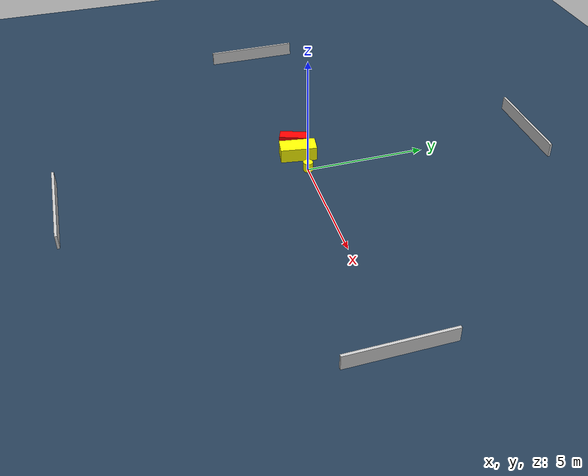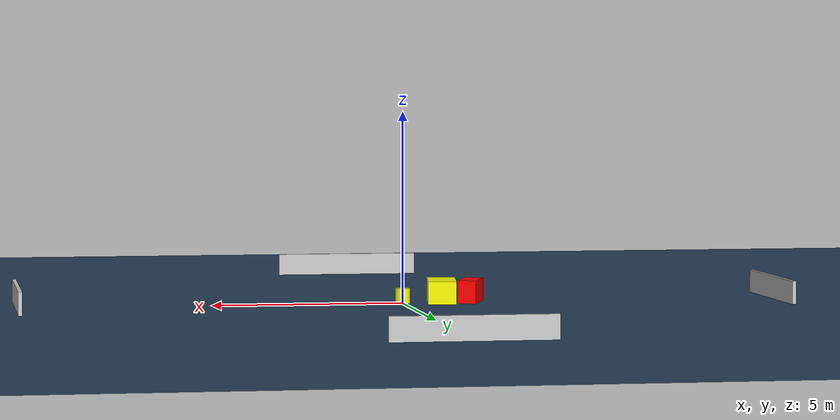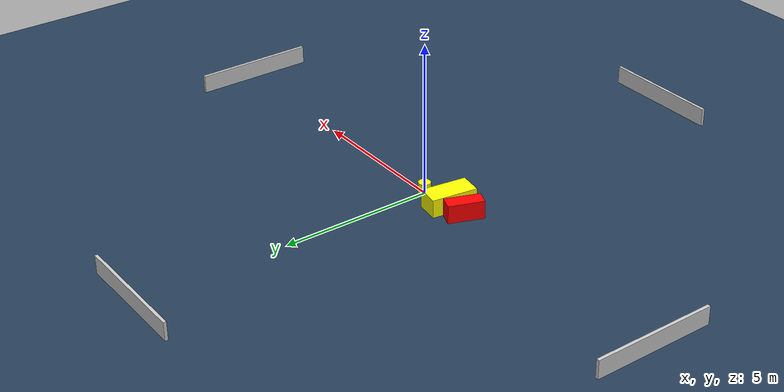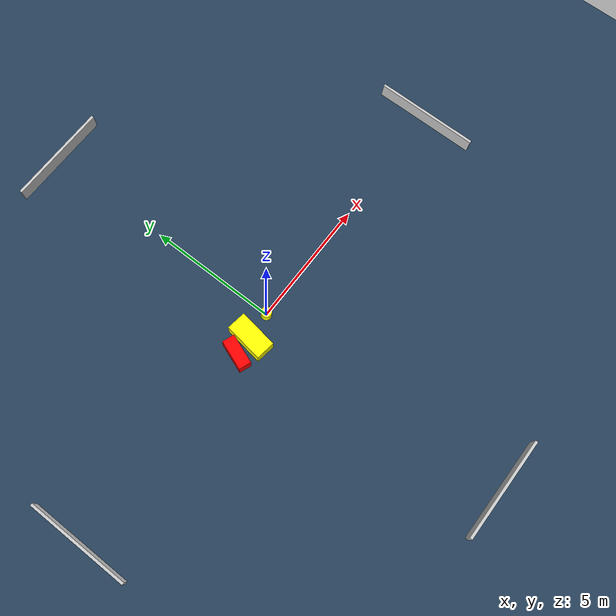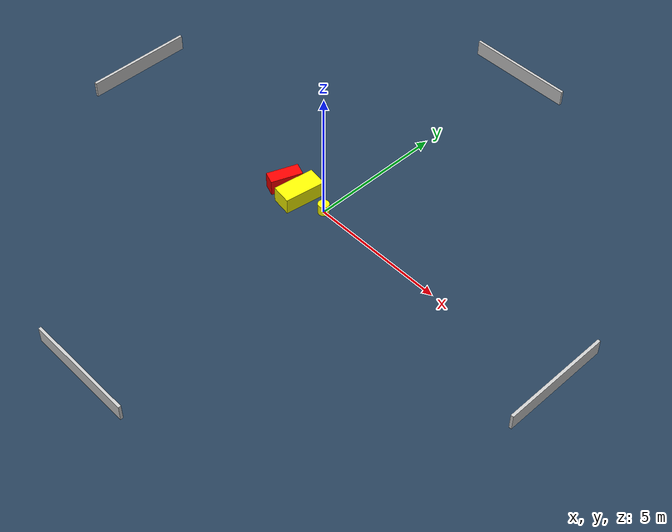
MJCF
<?xml version="1.0" ?>
<mujoco model="generated_environment">
  <option timestep="0.01" integrator="RK4" cone="elliptic"/>
  <default>
    <geom density="1"/>
  </default>
  <asset>
    <texture builtin="gradient" height="3072" name="skybox" rgb1="0.3 0.5 0.7" rgb2="0 0 0" type="skybox" width="512"/>
    <texture builtin="checker" height="300" name="groundplane" rgb1="0.2 0.3 0.4" rgb2="0.1 0.2 0.3" type="2d" width="300"/>
    <material name="groundplane" reflectance="0.2" texrepeat="5 5" texture="groundplane"/>
  </asset>
  <worldbody>
    <light dir="0 0 -1" directional="true" pos="0 0 1.5"/>
    <geom condim="3" friction="0.5 0.005 0.001" material="groundplane" name="floor" pos="0 0 0" size="0 0 0.05" type="plane"/>
    <body name="walls">
      <geom name="wall_1" condim="4" pos="-10.0 0.0 0.3" rgba="0.800000011920929 0.800000011920929 0.800000011920929 1.0" size="0.05 2.0 0.3" type="box"/>
      <geom name="wall_2" condim="4" pos="10.0 0.0 0.3" rgba="0.800000011920929 0.800000011920929 0.800000011920929 1.0" size="0.05 2.0 0.3" type="box"/>
      <geom name="wall_3" condim="4" pos="0.0 -10.0 0.3" rgba="0.800000011920929 0.800000011920929 0.800000011920929 1.0" size="2.0 0.05 0.3" type="box"/>
      <geom name="wall_4" condim="4" pos="0.0 10.0 0.3" rgba="0.800000011920929 0.800000011920929 0.800000011920929 1.0" size="2.0 0.05 0.3" type="box"/>
    </body>
    <body name="robot">
      <joint name="joint_x" type="slide" pos="0 0 0" axis="1 0 0"/>
      <joint name="joint_y" type="slide" pos="0 0 0" axis="0 1 0"/>
      <geom name="robot" type="cylinder" pos="0.0 0.0 0.2" size="0.2 0.2 0.0" mass="5.0" friction="1.0 0.005 0.0001" condim="4" rgba="1.0 1.0 0.0 1.0"/>
    </body>
    <body name="obstacle_1_movable">
      <geom name="obstacle_1_movable" condim="4" pos="-1.0545970584531859 -0.12946072911369122 0.3" euler="0 0 351.62848471956306" friction="0.0 0.005 0.001" rgba="1.0 1.0 0.0 1.0" size="0.3742313868467939 0.7566496885701022 0.3" type="box" mass="0.1"/>
      <joint type="free"/>
    </body>
    <body name="obstacle_2_static">
      <geom name="obstacle_2_static" condim="4" pos="-1.8231445724091748 -0.10846793344686988 0.3" euler="0 0 159.38221067274114" friction="0.0 0.005 0.001" rgba="1.0 0.0 0.0 1.0" size="0.238952783307682 0.5791498182129251 0.3" type="box"/>
    </body>
  </worldbody>
  <actuator>
    <motor name="actuator_x" joint="joint_x" gear="1" ctrlrange="-1 1"/>
    <motor name="actuator_y" joint="joint_y" gear="1" ctrlrange="-1 1"/>
  </actuator>
</mujoco>
